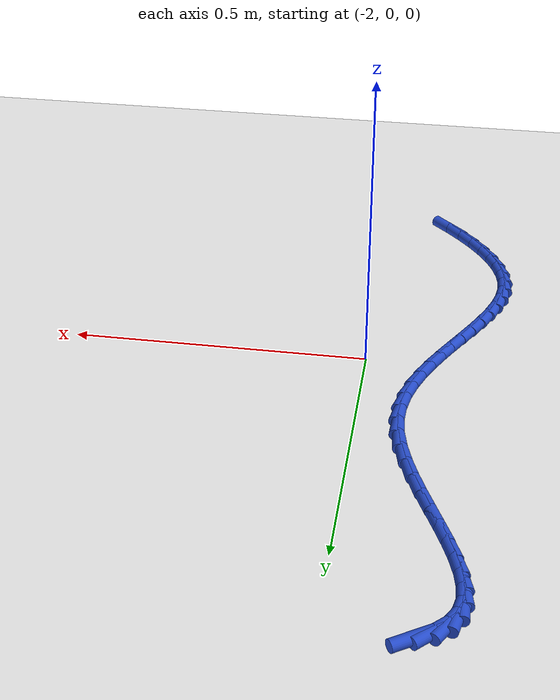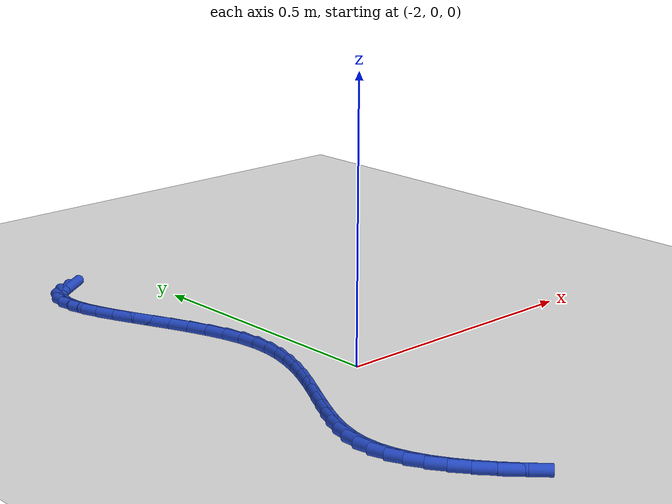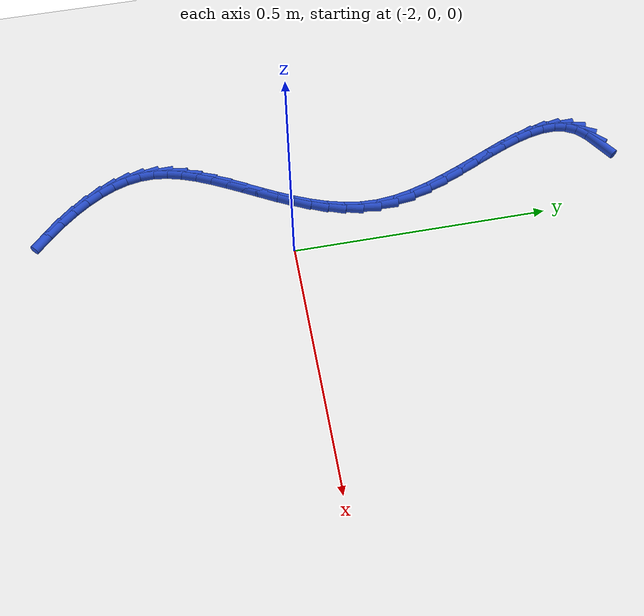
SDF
<sdf version="1.6">
 <world name="default">
  <model name="ground_plane">
   <static>1</static>
   <link name="link">
    <collision name="collision">
     <geometry><plane><normal>0 0 1</normal><size>100 100</size></plane></geometry>
     <surface><friction><ode><mu>100</mu><mu2>50</mu2></ode></friction></surface>
    </collision>
    <visual name="visual">
     <cast_shadows>0</cast_shadows>
     <geometry><plane><normal>0 0 1</normal><size>100 100</size></plane></geometry>
     <material>
      <script><uri>file://media/materials/scripts/gazebo.material</uri><name>Gazebo/WhiteGlow</name></script>
     </material>
    </visual>
   </link>
  </model>
  <model name="line">
   <link name="link_99">
    <pose>-2.1325696938955057 0.651761876570482 0.01 0 1.57 0.586401141765999</pose>
    <collision name="collision">
     <geometry><cylinder><radius>0.01</radius><length>0.08</length></cylinder></geometry>
    </collision>
    <visual name="visual">
     <material>
      <script><name>Gazebo/Blue</name><uri>file://media/materials/scripts/gazebo.material</uri></script>
     </material>
     <geometry><cylinder><radius>0.01</radius><length>0.08</length></cylinder></geometry>
    </visual>
   </link>
   <link name="link_100">
    <pose>-2.156110843060989 0.6361221750135593 0.01 0 1.57 0.7935270501261672</pose>
    <collision name="collision">
     <geometry><cylinder><radius>0.01</radius><length>0.08</length></cylinder></geometry>
    </collision>
    <visual name="visual">
     <material>
      <script><name>Gazebo/Blue</name><uri>file://media/materials/scripts/gazebo.material</uri></script>
     </material>
     <geometry><cylinder><radius>0.01</radius><length>0.08</length></cylinder></geometry>
    </visual>
   </link>
   <link name="link_101">
    <pose>-2.1737990831134555 0.6181440003294743 0.01 0 1.57 1.0851061813735285</pose>
    <collision name="collision">
     <geometry><cylinder><radius>0.01</radius><length>0.08</length></cylinder></geometry>
    </collision>
    <visual name="visual">
     <material>
      <script><name>Gazebo/Blue</name><uri>file://media/materials/scripts/gazebo.material</uri></script>
     </material>
     <geometry><cylinder><radius>0.01</radius><length>0.08</length></cylinder></geometry>
    </visual>
   </link>
   <link name="link_102">
    <pose>-2.1847656421468593 0.5973686819829471 0.01 0 1.57 1.3742562967150136</pose>
    <collision name="collision">
     <geometry><cylinder><radius>0.01</radius><length>0.08</length></cylinder></geometry>
    </collision>
    <visual name="visual">
     <material>
      <script><name>Gazebo/Blue</name><uri>file://media/materials/scripts/gazebo.material</uri></script>
     </material>
     <geometry><cylinder><radius>0.01</radius><length>0.08</length></cylinder></geometry>
    </visual>
   </link>
   <link name="link_103">
    <pose>-2.18944157010138 0.5738845850691354 0.01 0 1.57 -1.5417851789253603</pose>
    <collision name="collision">
     <geometry><cylinder><radius>0.01</radius><length>0.08</length></cylinder></geometry>
    </collision>
    <visual name="visual">
     <material>
      <script><name>Gazebo/Blue</name><uri>file://media/materials/scripts/gazebo.material</uri></script>
     </material>
     <geometry><cylinder><radius>0.01</radius><length>0.08</length></cylinder></geometry>
    </visual>
   </link>
   <link name="link_104">
    <pose>-2.188689304240473 0.5479616258988812 0.01 0 1.57 -1.3837113470608586</pose>
    <collision name="collision">
     <geometry><cylinder><radius>0.01</radius><length>0.08</length></cylinder></geometry>
    </collision>
    <visual name="visual">
     <material>
      <script><name>Gazebo/Blue</name><uri>file://media/materials/scripts/gazebo.material</uri></script>
     </material>
     <geometry><cylinder><radius>0.01</radius><length>0.08</length></cylinder></geometry>
    </visual>
   </link>
   <link name="link_105">
    <pose>-2.1833715662034168 0.5198698404638158 0.01 0 1.57 -1.278626437674011</pose>
    <collision name="collision">
     <geometry><cylinder><radius>0.01</radius><length>0.08</length></cylinder></geometry>
    </collision>
    <visual name="visual">
     <material>
      <script><name>Gazebo/Blue</name><uri>file://media/materials/scripts/gazebo.material</uri></script>
     </material>
     <geometry><cylinder><radius>0.01</radius><length>0.08</length></cylinder></geometry>
    </visual>
   </link>
   <link name="link_106">
    <pose>-2.174351077629489 0.48987926475557225 0.01 0 1.57 -1.211935027329714</pose>
    <collision name="collision">
     <geometry><cylinder><radius>0.01</radius><length>0.08</length></cylinder></geometry>
    </collision>
    <visual name="visual">
     <material>
      <script><name>Gazebo/Blue</name><uri>file://media/materials/scripts/gazebo.material</uri></script>
     </material>
     <geometry><cylinder><radius>0.01</radius><length>0.08</length></cylinder></geometry>
    </visual>
   </link>
   <link name="link_107">
    <pose>-2.162490560157968 0.45825993476578203 0.01 0 1.57 -1.1735023277702743</pose>
    <collision name="collision">
     <geometry><cylinder><radius>0.01</radius><length>0.08</length></cylinder></geometry>
    </collision>
    <visual name="visual">
     <material>
      <script><name>Gazebo/Blue</name><uri>file://media/materials/scripts/gazebo.material</uri></script>
     </material>
     <geometry><cylinder><radius>0.01</radius><length>0.08</length></cylinder></geometry>
    </visual>
   </link>
   <link name="link_108">
    <pose>-2.148652735428131 0.42528188648607723 0.01 0 1.57 -1.1571985523710622</pose>
    <collision name="collision">
     <geometry><cylinder><radius>0.01</radius><length>0.08</length></cylinder></geometry>
    </collision>
    <visual name="visual">
     <material>
      <script><name>Gazebo/Blue</name><uri>file://media/materials/scripts/gazebo.material</uri></script>
     </material>
     <geometry><cylinder><radius>0.01</radius><length>0.08</length></cylinder></geometry>
    </visual>
   </link>
   <link name="link_109">
    <pose>-2.133700325079256 0.3912151559080905 0.01 0 1.57 -1.1597841006517144</pose>
    <collision name="collision">
     <geometry><cylinder><radius>0.01</radius><length>0.08</length></cylinder></geometry>
    </collision>
    <visual name="visual">
     <material>
      <script><name>Gazebo/Blue</name><uri>file://media/materials/scripts/gazebo.material</uri></script>
     </material>
     <geometry><cylinder><radius>0.01</radius><length>0.08</length></cylinder></geometry>
    </visual>
   </link>
   <link name="link_110">
    <pose>-2.1184960507506205 0.35632977902345336 0.01 0 1.57 -1.1801180684486674</pose>
    <collision name="collision">
     <geometry><cylinder><radius>0.01</radius><length>0.08</length></cylinder></geometry>
    </collision>
    <visual name="visual">
     <material>
      <script><name>Gazebo/Blue</name><uri>file://media/materials/scripts/gazebo.material</uri></script>
     </material>
     <geometry><cylinder><radius>0.01</radius><length>0.08</length></cylinder></geometry>
    </visual>
   </link>
   <link name="link_111">
    <pose>-2.1039026340815026 0.32089579182379857 0.01 0 1.57 -1.218728889592949</pose>
    <collision name="collision">
     <geometry><cylinder><radius>0.01</radius><length>0.08</length></cylinder></geometry>
    </collision>
    <visual name="visual">
     <material>
      <script><name>Gazebo/Blue</name><uri>file://media/materials/scripts/gazebo.material</uri></script>
     </material>
     <geometry><cylinder><radius>0.01</radius><length>0.08</length></cylinder></geometry>
    </visual>
   </link>
   <link name="link_112">
    <pose>-2.0907827967111796 0.2851832303007575 0.01 0 1.57 -1.277614351812</pose>
    <collision name="collision">
     <geometry><cylinder><radius>0.01</radius><length>0.08</length></cylinder></geometry>
    </collision>
    <visual name="visual">
     <material>
      <script><name>Gazebo/Blue</name><uri>file://media/materials/scripts/gazebo.material</uri></script>
     </material>
     <geometry><cylinder><radius>0.01</radius><length>0.08</length></cylinder></geometry>
    </visual>
   </link>
   <link name="link_113">
    <pose>-2.079999260278931 0.24946213044596321 0.01 0 1.57 -1.3600797600177474</pose>
    <collision name="collision">
     <geometry><cylinder><radius>0.01</radius><length>0.08</length></cylinder></geometry>
    </collision>
    <visual name="visual">
     <material>
      <script><name>Gazebo/Blue</name><uri>file://media/materials/scripts/gazebo.material</uri></script>
     </material>
     <geometry><cylinder><radius>0.01</radius><length>0.08</length></cylinder></geometry>
    </visual>
   </link>
   <link name="link_114">
    <pose>-2.0724147464240326 0.21400252825104688 0.01 0 1.57 -1.4702738599406102</pose>
    <collision name="collision">
     <geometry><cylinder><radius>0.01</radius><length>0.08</length></cylinder></geometry>
    </collision>
    <visual name="visual">
     <material>
      <script><name>Gazebo/Blue</name><uri>file://media/materials/scripts/gazebo.material</uri></script>
     </material>
     <geometry><cylinder><radius>0.01</radius><length>0.08</length></cylinder></geometry>
    </visual>
   </link>
   <link name="link_115">
    <pose>-2.0688918132940595 0.1790744261082829 0.01 0 1.57 1.5392988508147278</pose>
    <collision name="collision">
     <geometry><cylinder><radius>0.01</radius><length>0.08</length></cylinder></geometry>
    </collision>
    <visual name="visual">
     <material>
      <script><name>Gazebo/Blue</name><uri>file://media/materials/scripts/gazebo.material</uri></script>
     </material>
     <geometry><cylinder><radius>0.01</radius><length>0.08</length></cylinder></geometry>
    </visual>
   </link>
   <link name="link_116">
    <pose>-2.0699691676658296 0.1448812713607154 0.01 0 1.57 1.4161838449778035</pose>
    <collision name="collision">
     <geometry><cylinder><radius>0.01</radius><length>0.08</length></cylinder></geometry>
    </collision>
    <visual name="visual">
     <material>
      <script><name>Gazebo/Blue</name><uri>file://media/materials/scripts/gazebo.material</uri></script>
     </material>
     <geometry><cylinder><radius>0.01</radius><length>0.08</length></cylinder></geometry>
    </visual>
   </link>
   <link name="link_117">
    <pose>-2.0751842064220343 0.11142073106044496 0.01 0 1.57 1.3113751150499688</pose>
    <collision name="collision">
     <geometry><cylinder><radius>0.01</radius><length>0.08</length></cylinder></geometry>
    </collision>
    <visual name="visual">
     <material>
      <script><name>Gazebo/Blue</name><uri>file://media/materials/scripts/gazebo.material</uri></script>
     </material>
     <geometry><cylinder><radius>0.01</radius><length>0.08</length></cylinder></geometry>
    </visual>
   </link>
   <link name="link_118">
    <pose>-2.0838814016527003 0.07865082407453396 0.01 0 1.57 1.2263388466717202</pose>
    <collision name="collision">
     <geometry><cylinder><radius>0.01</radius><length>0.08</length></cylinder></geometry>
    </collision>
    <visual name="visual">
     <material>
      <script><name>Gazebo/Blue</name><uri>file://media/materials/scripts/gazebo.material</uri></script>
     </material>
     <geometry><cylinder><radius>0.01</radius><length>0.08</length></cylinder></geometry>
    </visual>
   </link>
   <link name="link_119">
    <pose>-2.0954052254478497 0.04652956927004199 0.01 0 1.57 1.160857635717197</pose>
    <collision name="collision">
     <geometry><cylinder><radius>0.01</radius><length>0.08</length></cylinder></geometry>
    </collision>
    <visual name="visual">
     <material>
      <script><name>Gazebo/Blue</name><uri>file://media/materials/scripts/gazebo.material</uri></script>
     </material>
     <geometry><cylinder><radius>0.01</radius><length>0.08</length></cylinder></geometry>
    </visual>
   </link>
   <link name="link_120">
    <pose>-2.1091001498975075 0.01501498551402957 0.01 0 1.57 1.1140076103400267</pose>
    <collision name="collision">
     <geometry><cylinder><radius>0.01</radius><length>0.08</length></cylinder></geometry>
    </collision>
    <visual name="visual">
     <material>
      <script><name>Gazebo/Blue</name><uri>file://media/materials/scripts/gazebo.material</uri></script>
     </material>
     <geometry><cylinder><radius>0.01</radius><length>0.08</length></cylinder></geometry>
    </visual>
   </link>
   <link name="link_121">
    <pose>-2.124310647091698 -0.01593490832644273 0.01 0 1.57 1.0848722479211956</pose>
    <collision name="collision">
     <geometry><cylinder><radius>0.01</radius><length>0.08</length></cylinder></geometry>
    </collision>
    <visual name="visual">
     <material>
      <script><name>Gazebo/Blue</name><uri>file://media/materials/scripts/gazebo.material</uri></script>
     </material>
     <geometry><cylinder><radius>0.01</radius><length>0.08</length></cylinder></geometry>
    </visual>
   </link>
   <link name="link_122">
    <pose>-2.140381189120445 -0.04636209338431521 0.01 0 1.57 1.072978882816182</pose>
    <collision name="collision">
     <geometry><cylinder><radius>0.01</radius><length>0.08</length></cylinder></geometry>
    </collision>
    <visual name="visual">
     <material>
      <script><name>Gazebo/Blue</name><uri>file://media/materials/scripts/gazebo.material</uri></script>
     </material>
     <geometry><cylinder><radius>0.01</radius><length>0.08</length></cylinder></geometry>
    </visual>
   </link>
   <link name="link_123">
    <pose>-2.156656248073772 -0.07630855079252583 0.01 0 1.57 1.0785568294819334</pose>
    <collision name="collision">
     <geometry><cylinder><radius>0.01</radius><length>0.08</length></cylinder></geometry>
    </collision>
    <visual name="visual">
     <material>
      <script><name>Gazebo/Blue</name><uri>file://media/materials/scripts/gazebo.material</uri></script>
     </material>
     <geometry><cylinder><radius>0.01</radius><length>0.08</length></cylinder></geometry>
    </visual>
   </link>
   <link name="link_124">
    <pose>-2.172480296041704 -0.10581626168401471 0.01 0 1.57 1.1027057075063018</pose>
    <collision name="collision">
     <geometry><cylinder><radius>0.01</radius><length>0.08</length></cylinder></geometry>
    </collision>
    <visual name="visual">
     <material>
      <script><name>Gazebo/Blue</name><uri>file://media/materials/scripts/gazebo.material</uri></script>
     </material>
     <geometry><cylinder><radius>0.01</radius><length>0.08</length></cylinder></geometry>
    </visual>
   </link>
   <link name="link_125">
    <pose>-2.187197805114264 -0.13492720719172158 0.01 0 1.57 1.1475037939342747</pose>
    <collision name="collision">
     <geometry><cylinder><radius>0.01</radius><length>0.08</length></cylinder></geometry>
    </collision>
    <visual name="visual">
     <material>
      <script><name>Gazebo/Blue</name><uri>file://media/materials/scripts/gazebo.material</uri></script>
     </material>
     <geometry><cylinder><radius>0.01</radius><length>0.08</length></cylinder></geometry>
    </visual>
   </link>
   <link name="link_126">
    <pose>-2.2001532473814778 -0.16368336844858639 0.01 0 1.57 1.2159895668689773</pose>
    <collision name="collision">
     <geometry><cylinder><radius>0.01</radius><length>0.08</length></cylinder></geometry>
    </collision>
    <visual name="visual">
     <material>
      <script><name>Gazebo/Blue</name><uri>file://media/materials/scripts/gazebo.material</uri></script>
     </material>
     <geometry><cylinder><radius>0.01</radius><length>0.08</length></cylinder></geometry>
    </visual>
   </link>
   <link name="link_127">
    <pose>-2.210691094933368 -0.19212672658754726 0.01 0 1.57 1.3117836686591775</pose>
    <collision name="collision">
     <geometry><cylinder><radius>0.01</radius><length>0.08</length></cylinder></geometry>
    </collision>
    <visual name="visual">
     <material>
      <script><name>Gazebo/Blue</name><uri>file://media/materials/scripts/gazebo.material</uri></script>
     </material>
     <geometry><cylinder><radius>0.01</radius><length>0.08</length></cylinder></geometry>
    </visual>
   </link>
   <link name="link_128">
    <pose>-2.218155819859959 -0.22029926274154443 0.01 0 1.57 1.4378844679113854</pose>
    <collision name="collision">
     <geometry><cylinder><radius>0.01</radius><length>0.08</length></cylinder></geometry>
    </collision>
    <visual name="visual">
     <material>
      <script><name>Gazebo/Blue</name><uri>file://media/materials/scripts/gazebo.material</uri></script>
     </material>
     <geometry><cylinder><radius>0.01</radius><length>0.08</length></cylinder></geometry>
    </visual>
   </link>
   <link name="link_129">
    <pose>-2.221891894251275 -0.24824295804351737 0.01 0 1.57 -1.5506770501274256</pose>
    <collision name="collision">
     <geometry><cylinder><radius>0.01</radius><length>0.08</length></cylinder></geometry>
    </collision>
    <visual name="visual">
     <material>
      <script><name>Gazebo/Blue</name><uri>file://media/materials/scripts/gazebo.material</uri></script>
     </material>
     <geometry><cylinder><radius>0.01</radius><length>0.08</length></cylinder></geometry>
    </visual>
   </link>
   <link name="link_130">
    <pose>-2.22133344533293 -0.275996121087289 0.01 0 1.57 -1.398051390412092</pose>
    <collision name="collision">
     <geometry><cylinder><radius>0.01</radius><length>0.08</length></cylinder></geometry>
    </collision>
    <visual name="visual">
     <material>
      <script><name>Gazebo/Blue</name><uri>file://media/materials/scripts/gazebo.material</uri></script>
     </material>
     <geometry><cylinder><radius>0.01</radius><length>0.08</length></cylinder></geometry>
    </visual>
   </link>
   <link name="link_131">
    <pose>-2.216521863914519 -0.3035721851569585 0.01 0 1.57 -1.261003253735213</pose>
    <collision name="collision">
     <geometry><cylinder><radius>0.01</radius><length>0.08</length></cylinder></geometry>
    </collision>
    <visual name="visual">
     <material>
      <script><name>Gazebo/Blue</name><uri>file://media/materials/scripts/gazebo.material</uri></script>
     </material>
     <geometry><cylinder><radius>0.01</radius><length>0.08</length></cylinder></geometry>
    </visual>
   </link>
   <link name="link_132">
    <pose>-2.207750476152692 -0.33097426352081094 0.01 0 1.57 -1.142367115384994</pose>
    <collision name="collision">
     <geometry><cylinder><radius>0.01</radius><length>0.08</length></cylinder></geometry>
    </collision>
    <visual name="visual">
     <material>
      <script><name>Gazebo/Blue</name><uri>file://media/materials/scripts/gazebo.material</uri></script>
     </material>
     <geometry><cylinder><radius>0.01</radius><length>0.08</length></cylinder></geometry>
    </visual>
   </link>
   <link name="link_133">
    <pose>-2.1953134219781325 -0.35820543611254596 0.01 0 1.57 -1.0421258091920287</pose>
    <collision name="collision">
     <geometry><cylinder><radius>0.01</radius><length>0.08</length></cylinder></geometry>
    </collision>
    <visual name="visual">
     <material>
      <script><name>Gazebo/Blue</name><uri>file://media/materials/scripts/gazebo.material</uri></script>
     </material>
     <geometry><cylinder><radius>0.01</radius><length>0.08</length></cylinder></geometry>
    </visual>
   </link>
   <link name="link_134">
    <pose>-2.1795048413215254 -0.38526878286586264 0.01 0 1.57 -0.9586509129933527</pose>
    <collision name="collision">
     <geometry><cylinder><radius>0.01</radius><length>0.08</length></cylinder></geometry>
    </collision>
    <visual name="visual">
     <material>
      <script><name>Gazebo/Blue</name><uri>file://media/materials/scripts/gazebo.material</uri></script>
     </material>
     <geometry><cylinder><radius>0.01</radius><length>0.08</length></cylinder></geometry>
    </visual>
   </link>
   <link name="link_135">
    <pose>-2.1606188741135552 -0.4121673837144607 0.01 0 1.57 -0.8897098538132778</pose>
    <collision name="collision">
     <geometry><cylinder><radius>0.01</radius><length>0.08</length></cylinder></geometry>
    </collision>
    <visual name="visual">
     <material>
      <script><name>Gazebo/Blue</name><uri>file://media/materials/scripts/gazebo.material</uri></script>
     </material>
     <geometry><cylinder><radius>0.01</radius><length>0.08</length></cylinder></geometry>
    </visual>
   </link>
   <link name="link_136">
    <pose>-2.1389496602849056 -0.43890431859203755 0.01 0 1.57 -0.8330598565929431</pose>
    <collision name="collision">
     <geometry><cylinder><radius>0.01</radius><length>0.08</length></cylinder></geometry>
    </collision>
    <visual name="visual">
     <material>
      <script><name>Gazebo/Blue</name><uri>file://media/materials/scripts/gazebo.material</uri></script>
     </material>
     <geometry><cylinder><radius>0.01</radius><length>0.08</length></cylinder></geometry>
    </visual>
   </link>
   <link name="link_137">
    <pose>-2.1147913397662608 -0.46548266743229294 0.01 0 1.57 -0.7867160966825772</pose>
    <collision name="collision">
     <geometry><cylinder><radius>0.01</radius><length>0.08</length></cylinder></geometry>
    </collision>
    <visual name="visual">
     <material>
      <script><name>Gazebo/Blue</name><uri>file://media/materials/scripts/gazebo.material</uri></script>
     </material>
     <geometry><cylinder><radius>0.01</radius><length>0.08</length></cylinder></geometry>
    </visual>
   </link>
  </model>
 </world>
</sdf>
